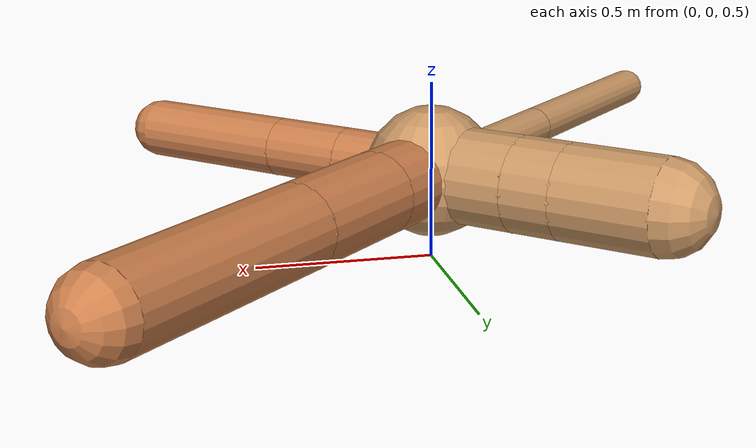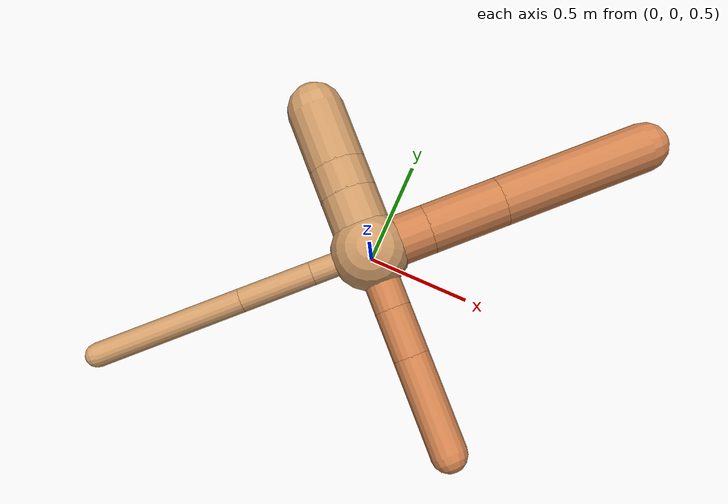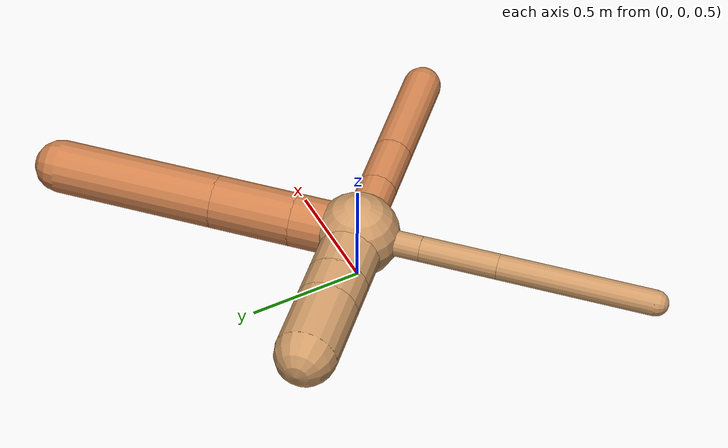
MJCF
<?xml version="1.0" ?>
<mujoco model="ant">

	<compiler angle="degree" coordinate="local" inertiafromgeom="true"/>

	<option integrator="RK4" timestep="0.01"/>

	<custom>

		<numeric data="0.0 0.0 0.55 1.0 0.0 0.0 0.0 0.0 1.0 0.0 -1.0 0.0 -1.0 0.0 1.0" name="init_qpos"/>

	</custom>

	<default>

		<joint armature="1" damping="1" limited="true"/>

		<geom conaffinity="0" condim="3" density="5.0" friction="1.5 0.1 0.1" margin="0.01" rgba="0.8 0.6 0.4 1"/>

	</default>

	<worldbody>

		<body name="torso" pos="0 0 0.75">

			<geom name="torso_geom" pos="0 0 0" size="0.18359900650875824" type="sphere"/>

			<!--joint armature="0" damping="0" limited="false" margin="0.01" name="root" pos="0 0 0" type="free"/-->

			<body name="front_left_leg" pos="0 0 0">

				<geom fromto="0 0 0 0.2 0.2 0" name="aux_1_geom" size="0.11628501852533493" type="capsule" rgba=".8 .5 .3 1"/>

				<body name="aux_1" pos="0.2 0.2 0">

					<joint axis="0 0 1" name="hip_1" pos="0.0 0.0 0.0" range="-40 40" type="hinge"/>

					<geom fromto="0 0 0 0.2532152935968406 0.2532152935968406 0" name="left_leg_geom" size="0.11628501852533493" type="capsule" rgba=".8 .5 .3 1"/>

					<body pos="0.2532152935968406 0.2532152935968406 0" name="front_left_foot">

						<joint axis="-1 1 0" name="ankle_1" pos="0.0 0.0 0.0" range="30 100" type="hinge"/>

						<geom fromto="0 0 0 0.5064305871936812 0.5064305871936812 0" name="left_ankle_geom" size="0.11628501852533493" type="capsule" rgba=".8 .5 .3 1"/>

					</body>

				</body>

			</body>

			<body name="front_right_leg" pos="0 0 0">

				<geom fromto="0 0 0 -0.2 0.2 0" name="aux_2_geom" size="0.13563698824702036" type="capsule"/>

				<body name="aux_2" pos="-0.2 0.2 0">

					<joint axis="0 0 1" name="hip_2" pos="0.0 0.0 0.0" range="-40 40" type="hinge"/>

					<geom fromto="0 0 0 -0.1008391911020487 0.1008391911020487 0" name="right_leg_geom" size="0.13563698824702036" type="capsule"/>

					<body pos="-0.1008391911020487 0.1008391911020487 0" name="front_right_foot">

						<joint axis="1 1 0" name="ankle_2" pos="0.0 0.0 0.0" range="-100 -30" type="hinge"/>

						<geom fromto="0 0 0 -0.2016783822040974 0.2016783822040974 0" name="right_ankle_geom" size="0.13563698824702036" type="capsule"/>

					</body>

				</body>

			</body>

			<body name="left_back_leg" pos="0 0 0">

				<geom fromto="0 0 0 -0.2 -0.2 0" name="aux_3_geom" size="0.055808253593490495" type="capsule"/>

				<body name="aux_3" pos="-0.2 -0.2 0">

					<joint axis="0 0 1" name="hip_3" pos="0.0 0.0 0.0" range="-40 40" type="hinge"/>

					<geom fromto="0 0 0 -0.2403583392913351 -0.2403583392913351 0" name="back_leg_geom" size="0.055808253593490495" type="capsule"/>

					<body pos="-0.2403583392913351 -0.2403583392913351 0" name="left_back_foot">

						<joint axis="-1 1 0" name="ankle_3" pos="0.0 0.0 0.0" range="-100 -30" type="hinge"/>

						<geom fromto="0 0 0 -0.4807166785826702 -0.4807166785826702 0" name="third_ankle_geom" size="0.055808253593490495" type="capsule"/>

					</body>

				</body>

			</body>

			<body name="right_back_leg" pos="0 0 0">

				<geom fromto="0 0 0 0.2 -0.2 0" name="aux_4_geom" size="0.0852980953911363" type="capsule" rgba=".8 .5 .3 1"/>

				<body name="aux_4" pos="0.2 -0.2 0">

					<joint axis="0 0 1" name="hip_4" pos="0.0 0.0 0.0" range="-40 40" type="hinge"/>

					<geom fromto="0 0 0 0.1612543054633691 -0.1612543054633691 0" name="rightback_leg_geom" size="0.0852980953911363" type="capsule" rgba=".8 .5 .3 1"/>

					<body pos="0.1612543054633691 -0.1612543054633691 0" name="right_back_foot">

						<joint axis="1 1 0" name="ankle_4" pos="0.0 0.0 0.0" range="30 100" type="hinge"/>

						<geom fromto="0 0 0 0.3225086109267382 -0.3225086109267382 0" name="fourth_ankle_geom" size="0.0852980953911363" type="capsule" rgba=".8 .5 .3 1"/>

					</body>

				</body>

			</body>

		</body>

	</worldbody>

	<actuator>

		<motor ctrllimited="true" ctrlrange="-1.0 1.0" joint="hip_4" gear="150"/>

		<motor ctrllimited="true" ctrlrange="-1.0 1.0" joint="ankle_4" gear="150"/>

		<motor ctrllimited="true" ctrlrange="-1.0 1.0" joint="hip_1" gear="150"/>

		<motor ctrllimited="true" ctrlrange="-1.0 1.0" joint="ankle_1" gear="150"/>

		<motor ctrllimited="true" ctrlrange="-1.0 1.0" joint="hip_2" gear="150"/>

		<motor ctrllimited="true" ctrlrange="-1.0 1.0" joint="ankle_2" gear="150"/>

		<motor ctrllimited="true" ctrlrange="-1.0 1.0" joint="hip_3" gear="150"/>

		<motor ctrllimited="true" ctrlrange="-1.0 1.0" joint="ankle_3" gear="150"/>

	</actuator>

</mujoco>
